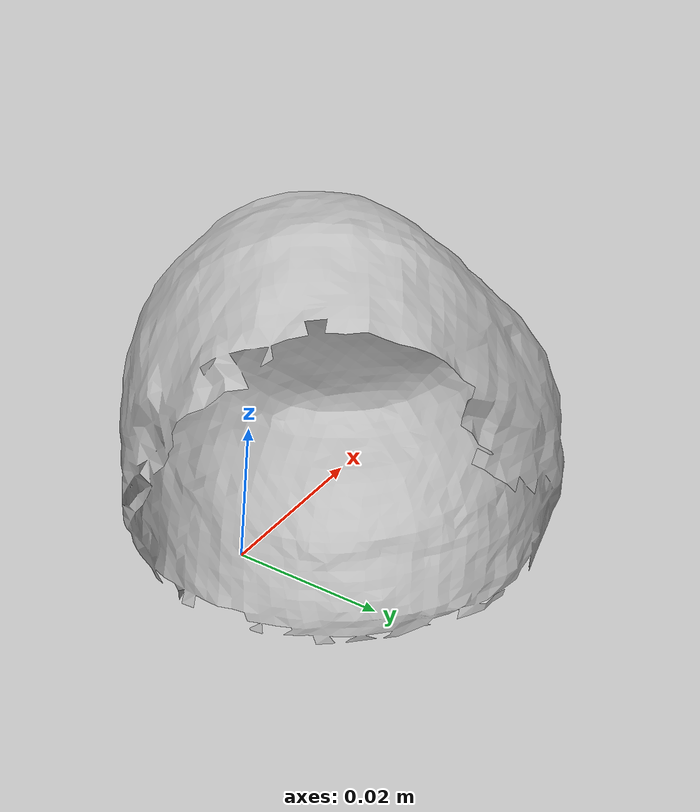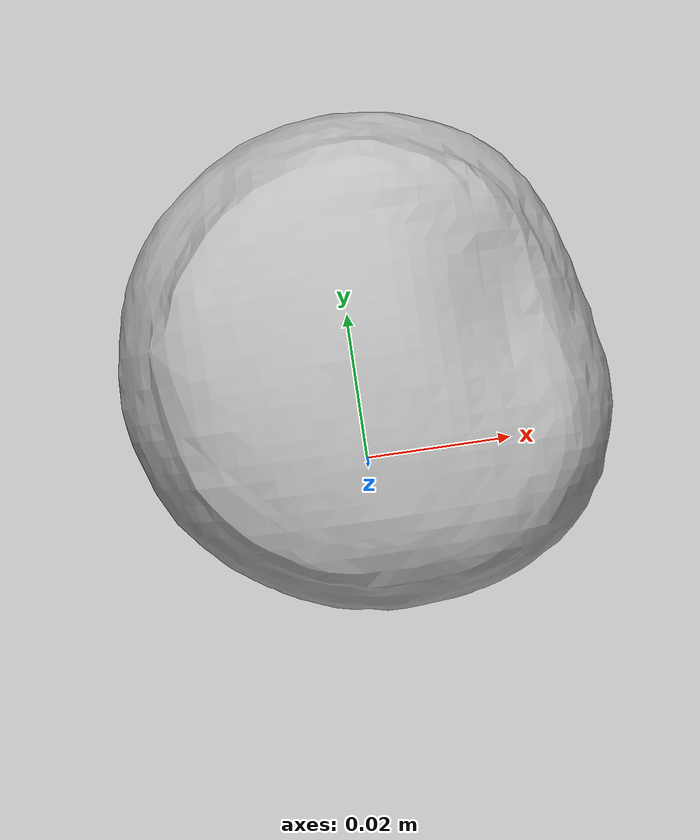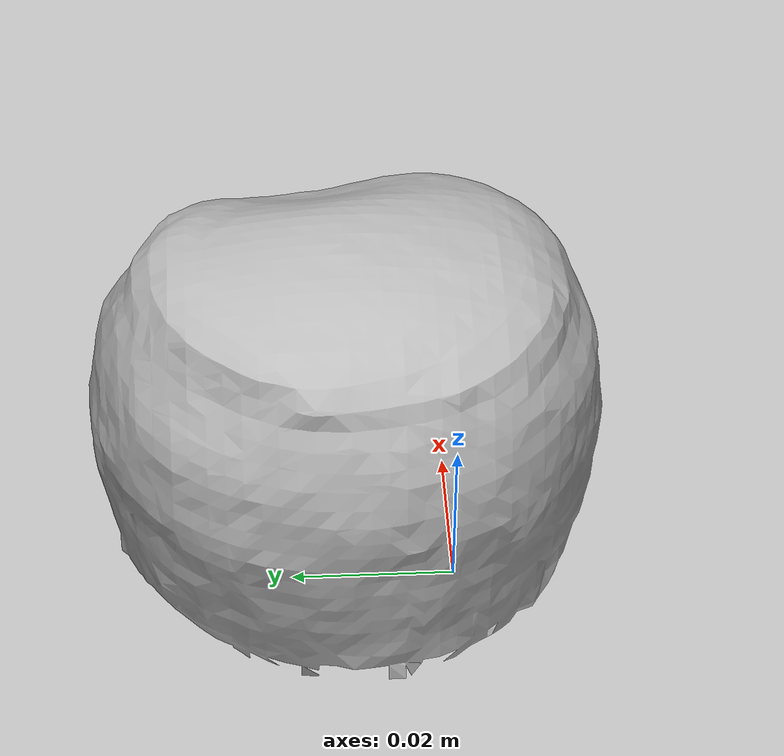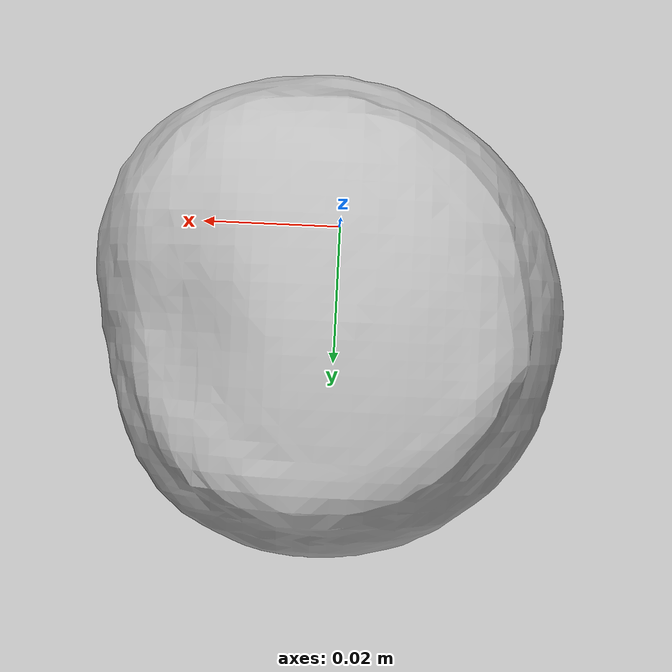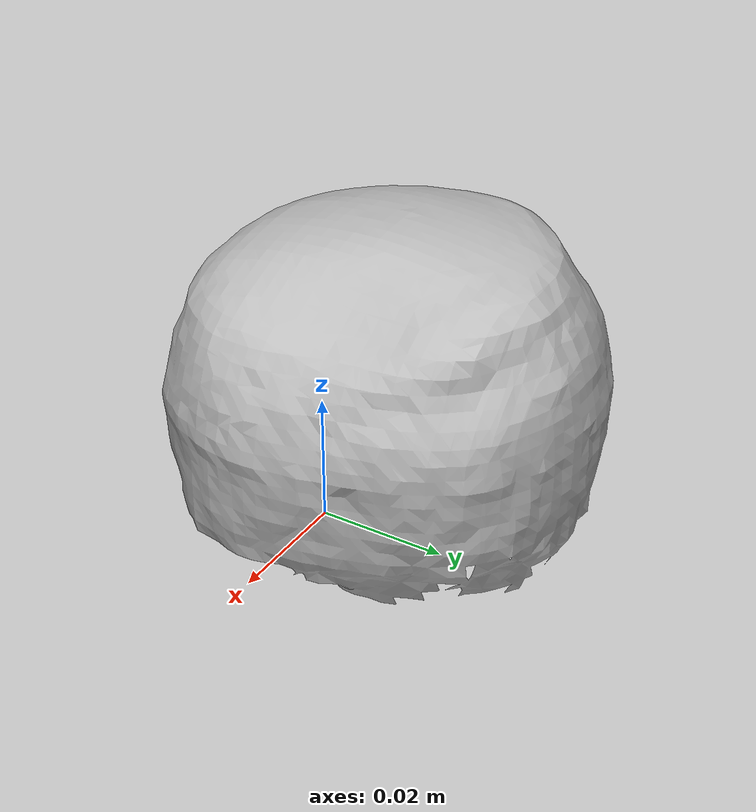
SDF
<?xml version="1.0" ?>
<sdf version="1.4">
  <model name="018_plum">
    <pose>0 0 0  0 0 0</pose>
    <link name="body">
      <inertial>
        <!-- Volume:  9.4912369000e-05 -->
        <mass> 1.0 </mass>
        <!-- Center of mass: -2.1389000000e-04  1.1732980000e-02  2.8166980000e-02 -->
        <pose> -2.1389000000e-04  1.1732980000e-02  2.8166980000e-02 0 0 0 </pose>
        <!-- Inertia matrix -->
        <inertia>
          <ixx>  3.1957624301e-04 </ixx>
          <ixy>  9.3766609071e-06 </ixy>
          <ixz>  5.7136978638e-06 </ixz>
          <iyy>  3.0489161218e-04 </iyy>
          <iyz> -8.6066126955e-07 </iyz>
          <izz>  3.5163436601e-04 </izz>
        </inertia>
      </inertial>
      <visual name="visual">
        <geometry>
          <mesh>
            <uri>model://018_plum/nontextured.stl</uri>
          </mesh>
        </geometry>
      </visual>
      <collision name="collision">
        <geometry>
          <mesh>
            <uri>model://018_plum/nontextured.stl</uri>
          </mesh>
        </geometry>
        <max_contacts>10</max_contacts>
        <surface>
          <friction>
            <ode>
              <mu>0.8</mu>
              <mu2>0.8</mu2>
              <slip1>0</slip1>
              <slip2>0</slip2>
            </ode>
            <torsional>
              <ode/>
            </torsional>
          </friction>
          <contact>
            <ode>
              <kp>1000000.0</kp>
              <kd>1.0</kd>
              <max_vel>0.0</max_vel>
            </ode>
          </contact>
        </surface>
      </collision>
    </link>
  </model>
</sdf>
